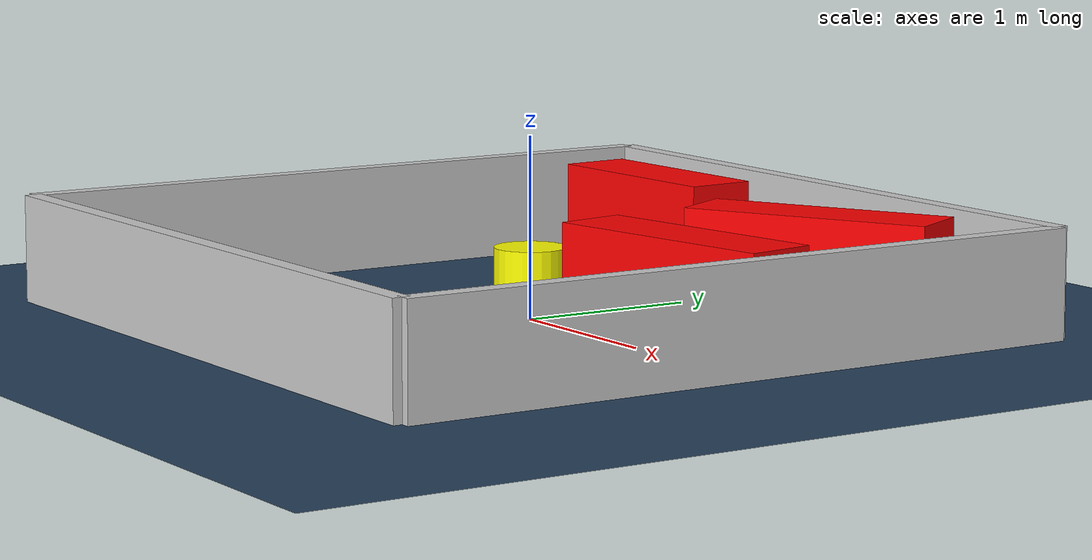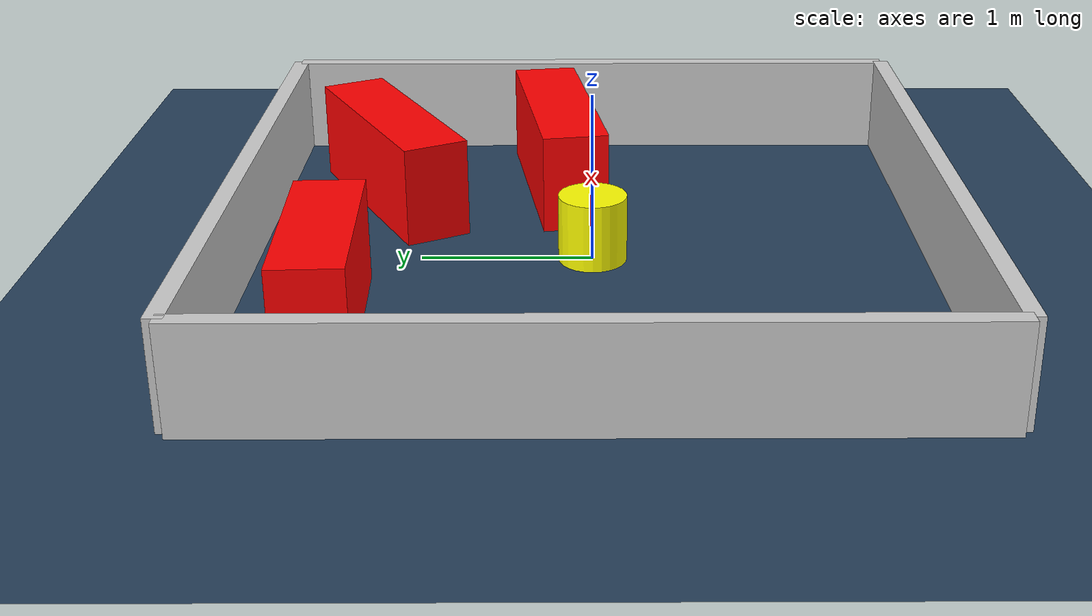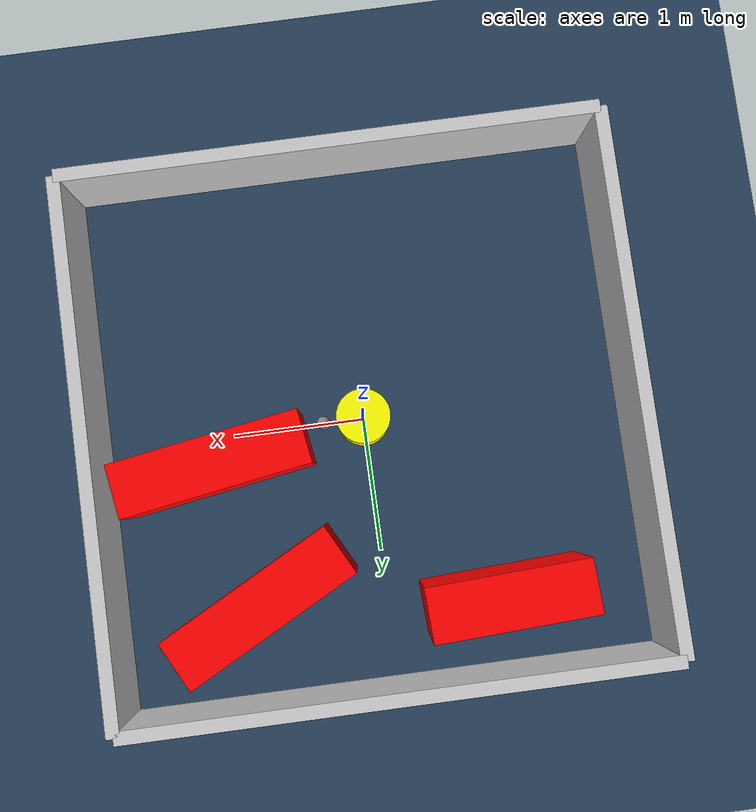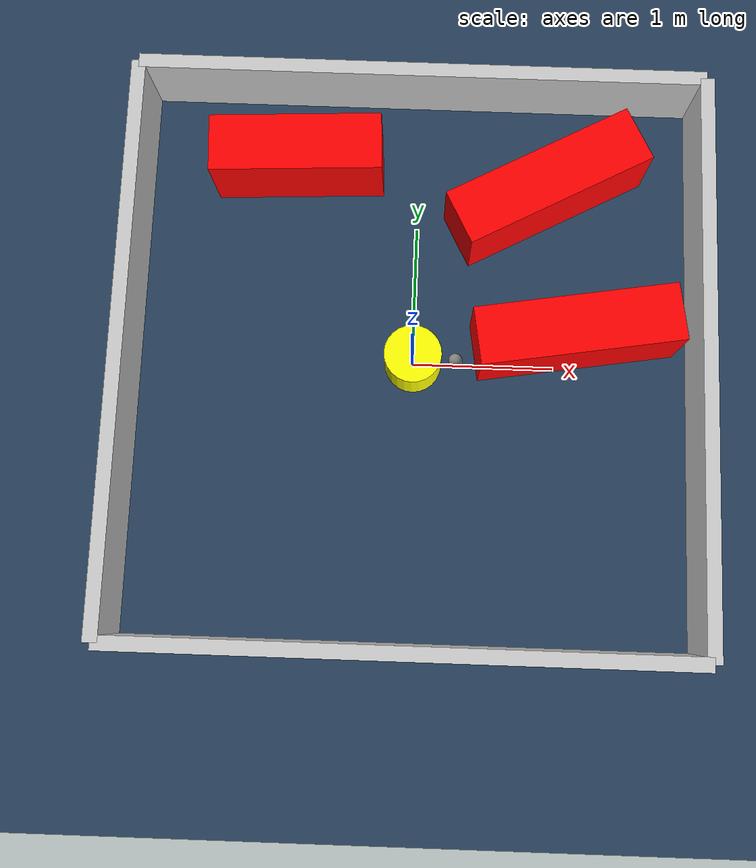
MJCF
<?xml version="1.0" ?>
<mujoco model="generated_environment">
  <option timestep="0.01" integrator="RK4" cone="elliptic"/>
  <default>
    <geom density="1"/>
  </default>
  <asset>
    <texture builtin="gradient" height="3072" rgb1="0.3 0.5 0.7" rgb2="0 0 0" type="skybox" width="512"/>
    <texture builtin="checker" height="300" mark="edge" markrgb="0.8 0.8 0.8" name="groundplane" rgb1="0.2 0.3 0.4" rgb2="0.1 0.2 0.3" type="2d" width="300"/>
    <material name="groundplane" reflectance="0.2" texrepeat="5 5" texture="groundplane" texuniform="true"/>
    <material name="robot" rgba="0.0 1.0 0.0 1"/>
  </asset>
  <worldbody>
    <light dir="0 0 -1" directional="true" pos="0 0 1.5"/>
    <geom condim="4" friction="1.0 0.005 0.001" material="groundplane" name="floor" size="0 0 0.05" type="plane"/>
    <body name="walls">
      <geom name="wall_1" condim="4" pos="-2.0 0.0 0.3" rgba="0.800000011920929 0.800000011920929 0.800000011920929 1.0" size="0.05 2.0 0.3" type="box"/>
      <geom name="wall_2" condim="4" pos="2.0 0.0 0.3" rgba="0.800000011920929 0.800000011920929 0.800000011920929 1.0" size="0.05 2.0 0.3" type="box"/>
      <geom name="wall_3" condim="4" pos="0.0 -2.0 0.3" rgba="0.800000011920929 0.800000011920929 0.800000011920929 1.0" size="2.0 0.05 0.3" type="box"/>
      <geom name="wall_4" condim="4" pos="0.0 2.0 0.3" rgba="0.800000011920929 0.800000011920929 0.800000011920929 1.0" size="2.0 0.05 0.3" type="box"/>
    </body>
    <body name="robot">
      <joint name="joint_x" type="slide" pos="0 0 0" axis="1 0 0"/>
      <joint name="joint_y" type="slide" pos="0 0 0" axis="0 1 0"/>
      <geom name="robot" type="sphere" pos="0.3 0.0 0.2" size="0.05" mass="5." friction="1.0 0.005 0.0001" condim="4" rgba="0.5 0.5 0.5 1.0"/>
      <site name="sensor_ball"/>
    </body>
    <body name="obstacle_movable_1">
      <geom name="obstacle_movable_1" condim="4" pos="0.0 0.0 0.2" euler="0 0 0.0" friction="1.0 0.005 0.001" rgba="1.0 1.0 0.0 1.0" size="0.2 0.2 0.0" type="cylinder" mass="0.1"/>
      <joint type="free"/>
    </body>
    <body name="obstacle_2_static">
      <geom name="obstacle_2_static" condim="4" pos="1.1276229797872366 0.20787010288127994 0.3" euler="0 0 9.028802132733627" friction="1.0 0.005 0.001" rgba="1 0 0 1" size="0.7045408188819933 0.2 0.3" type="box"/>
    </body>
    <body name="obstacle_3_static">
      <geom name="obstacle_3_static" condim="4" pos="-0.868525601957658 1.4350253323307045 0.3" euler="0 0 182.68766501304984" friction="1.0 0.005 0.001" rgba="1 0 0 1" size="0.6012660835581226 0.2 0.3" type="box"/>
    </body>
    <body name="obstacle_4_static">
      <geom name="obstacle_4_static" condim="4" pos="0.9049173127200438 1.251419692515791 0.3" euler="0 0 27.83042833201508" friction="1.0 0.005 0.001" rgba="1 0 0 1" size="0.7030894478552385 0.2 0.3" type="box"/>
    </body>
  </worldbody>
  <actuator>
    <motor name="actuator_x" joint="joint_x" gear="1" ctrlrange="-1 1"/>
    <motor name="actuator_y" joint="joint_y" gear="1" ctrlrange="-1 1"/>
  </actuator>
</mujoco>
